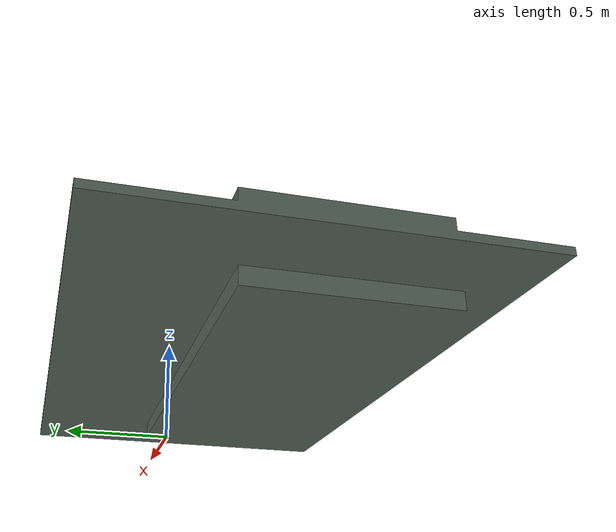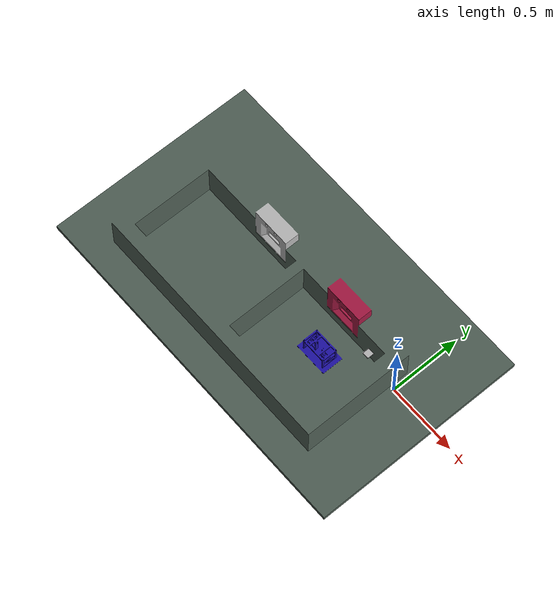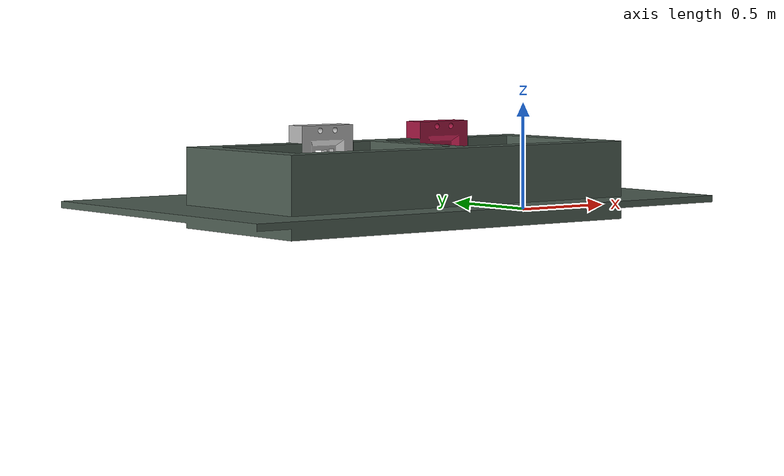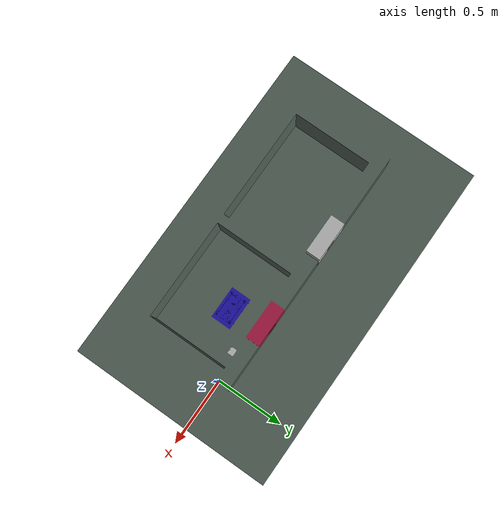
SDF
<?xml version="1.0" ?>
<sdf version="1.3">
  <model name="Hotcell">
    <static>true</static>
    <link name="link">
        <!--> Not necessary to declare inertia as the body is static<-->
      <collision name="collision">
        <geometry>
          <mesh>
            <uri>model://Hotcell/meshes/Hotcell.dae</uri>
<!--
            models/Hotcell/meshes/
            Hotcell.dae
            HotCell_ StorageCell.stl
-->
          </mesh>
        </geometry>
      </collision>
      <visual name="visual">
        <geometry>
          <mesh>
            <uri>model://Hotcell/meshes/Hotcell.dae</uri>
          </mesh>
        </geometry>
      </visual>
    </link>
  </model>
</sdf>
